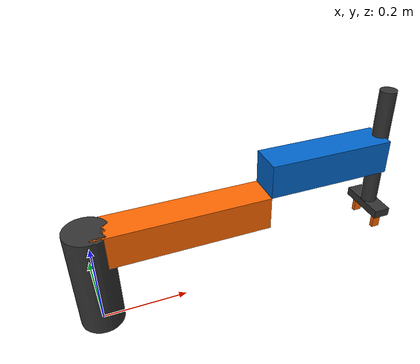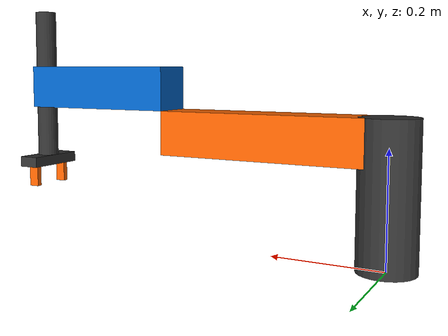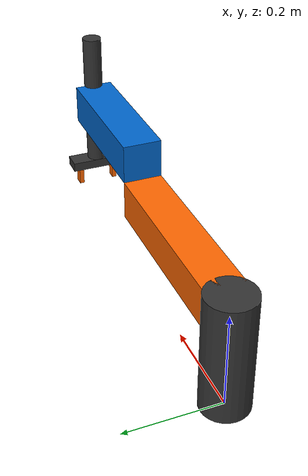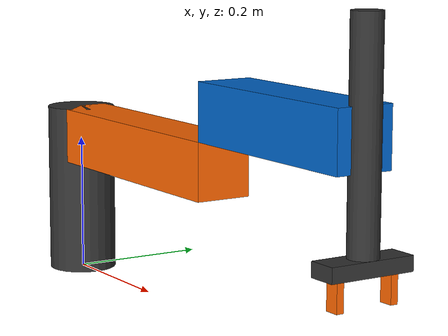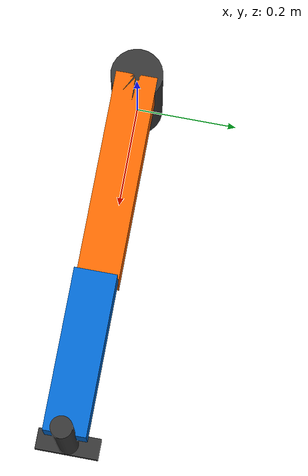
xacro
<?xml version="1.0"?>
<robot xmlns:xacro="http://www.ros.org/wiki/xacro" name="scara_robot">

    <!-- ================= PROPIEDADES ================= -->
    <xacro:property name="link_radius" value="0.05"/>
    <xacro:property name="base_height" value="0.25"/>
    <xacro:property name="arm1_length" value="0.4"/>
    <xacro:property name="arm2_length" value="0.3"/>
    <xacro:property name="base_weight" value="6.0"/>
    <xacro:property name="arm1_weight" value="2.7"/>
    <xacro:property name="arm2_weight" value="1.7"/>
    <xacro:property name="prismatic_weight" value="1.2"/>
    <xacro:property name="gripper_base_weight" value="0.2"/>
    <xacro:property name="finger_weight" value="0.05"/>

    <!-- ================= MATERIALES ================= -->
    <material name="dark_grey">
        <color rgba="0.2 0.2 0.2 1.0"/>
    </material>
    <material name="orange">
        <color rgba="1.0 0.4 0.0 1.0"/>
    </material>
    <material name="blue">
        <color rgba="0.0 0.4 0.8 1.0"/>
    </material>

    <!-- ================= BASE ================= -->
    <!-- Proyección en el suelo (z = 0) -->
    <link name="base_footprint" />

    <joint name="base_joint" type="fixed">
        <parent link="base_footprint" />
        <child link="base_link" />
        <origin xyz="0 0 0" rpy="0 0 0" />
    </joint>

    <!-- Cilindro principal de la base -->
    <link name="base_link">
        <visual>
            <geometry>
                <cylinder radius="${link_radius}" length="${base_height}" />
            </geometry>
            <origin xyz="0 0 ${base_height/2}" rpy="0 0 0" />
            <material name="dark_grey" />
        </visual>
        <collision>
            <geometry>
                <cylinder radius="${link_radius}" length="${base_height}" />
            </geometry>
        </collision>
        <inertial>
            <mass value="${base_weight}"/>
            <inertia ixx="1e-3" ixy="0.0" ixz="0.0" iyy="1e-3" iyz="0.0" izz="1e-3"/>
        </inertial>

    </link>

    <!-- ================= MACRO PARA BRAZOS ================= -->
    <xacro:macro name="scara_arm" params="prefix parent length weight color_name *origin">

        <!-- Articulación de rotación (Eje Z) -->
        <joint name="${prefix}_joint" type="revolute">
            <parent link="${parent}" />
            <child link="${prefix}_link" />
            <xacro:insert_block name="origin" />
            <axis xyz="0 0 1" />
            <limit lower="-3.14" upper="3.14" effort="10.0" velocity="1.0" />
        </joint>

        <!-- Eslabón rectangular -->
        <link name="${prefix}_link">
            <visual>
                <geometry>
                    <box size="${length} 0.08 0.08" />
                </geometry>
                <!-- Desplazamos la geometría la mitad en X para que gire desde el extremo -->
                <origin xyz="${length/2} 0 0" rpy="0 0 0" />
                <material name="${color_name}" />
            </visual>
            <collision>
                <geometry>
                    <box size="${length} 0.08 0.08" />
                </geometry>
            </collision>
            <inertial>
                <mass value="${weight}"/>
                <inertia ixx="1e-3" ixy="0.0" ixz="0.0" iyy="1e-3" iyz="0.0" izz="1e-3"/>
            </inertial>
        </link>

    </xacro:macro>

    <!-- ================= INSTANCIAS DE LOS BRAZOS ================= -->
    <!-- Primer Brazo (Naranja) -->
    <xacro:scara_arm prefix="arm1" parent="base_link" length="${arm1_length}" weight="${arm1_weight}" color_name="orange">
        <origin xyz="0 0 ${base_height - 0.04}" rpy="0 0 0" />
    </xacro:scara_arm>

    <!-- Segundo Brazo (Azul, conectado al final del primero) -->
    <xacro:scara_arm prefix="arm2" parent="arm1_link" length="${arm2_length}" weight="${arm2_weight}" color_name="blue">
        <origin xyz="${arm1_length} 0 0.08" rpy="0 0 0" />
    </xacro:scara_arm>

    <!-- ================= EJE VERTICAL (PRISMÁTICO) ================= -->
    <joint name="z_joint" type="prismatic">
        <parent link="arm2_link" />
        <child link="z_link" />
        <!-- Colocado al final del segundo brazo -->
        <origin xyz="${arm2_length} 0 0" rpy="0 0 0" />
        <axis xyz="0 0 1" />
        <!-- Movimiento vertical entre -0.15 m y 0.0 m -->
        <limit lower="-0.15" upper="0.0" effort="20.0" velocity="0.2" />
    </joint>

    <link name="z_link">
        <visual>
            <geometry>
                <cylinder radius="0.02" length="0.3" />
            </geometry>
            <origin xyz="0 0 0" rpy="0 0 0" />
            <material name="dark_grey" />
        </visual>
        <collision>
            <geometry>
                <cylinder radius="0.02" length="0.3" />
            </geometry>
        </collision>
        <inertial>
            <mass value="${prismatic_weight}"/>
            <inertia ixx="1e-3" ixy="0.0" ixz="0.0" iyy="1e-3" iyz="0.0" izz="1e-3"/>
        </inertial>
    </link>

    <!-- ================= BASE DEL GRIPPER ================= -->
    <joint name="gripper_base_joint" type="fixed">
        <parent link="z_link" />
        <child link="gripper_base" />
        <origin xyz="0 0 -0.15" rpy="0 0 0" />
    </joint>

    <link name="gripper_base">
        <visual>
            <geometry>
                <box size="0.04 0.12 0.02" />
            </geometry>
            <origin xyz="0 0 0" rpy="0 0 0" />
            <material name="dark_grey" />
        </visual>
        <collision>
            <geometry>
                <box size="0.04 0.12 0.02" />
            </geometry>
        </collision>
        <inertial>
            <mass value="${gripper_base_weight}"/>
            <inertia ixx="1e-3" ixy="0.0" ixz="0.0" iyy="1e-3" iyz="0.0" izz="1e-3"/>
        </inertial>
    </link>

    <!-- ================= MACRO Y DEDOS DEL GRIPPER ================= -->
    <xacro:macro name="gripper_finger" params="prefix Y_offset">
        <joint name="${prefix}_finger_joint" type="prismatic">
            <parent link="gripper_base" />
            <child link="${prefix}_finger_link" />
            <origin xyz="0 ${Y_offset} -0.03" rpy="0 0 0" />
            <axis xyz="0 1 0" />
            <limit lower="-0.02" upper="0.02" effort="5.0" velocity="0.1" />
        </joint>

        <link name="${prefix}_finger_link">
            <visual>
                <geometry>
                    <box size="0.02 0.01 0.04" />
                </geometry>
                <origin xyz="0 0 0" rpy="0 0 0" />
                <material name="orange" />
            </visual>
            <collision>
                <geometry>
                    <box size="0.02 0.01 0.04" />
                </geometry>
            </collision>
            <inertial>
                <mass value="${finger_weight}"/>
                <inertia ixx="1e-3" ixy="0.0" ixz="0.0" iyy="1e-3" iyz="0.0" izz="1e-3"/>
            </inertial>
        </link>
    </xacro:macro>

    <!-- Instancias de los dos dedos -->
    <xacro:gripper_finger prefix="left" Y_offset="0.04" />
    <xacro:gripper_finger prefix="right" Y_offset="-0.04" />

</robot>
